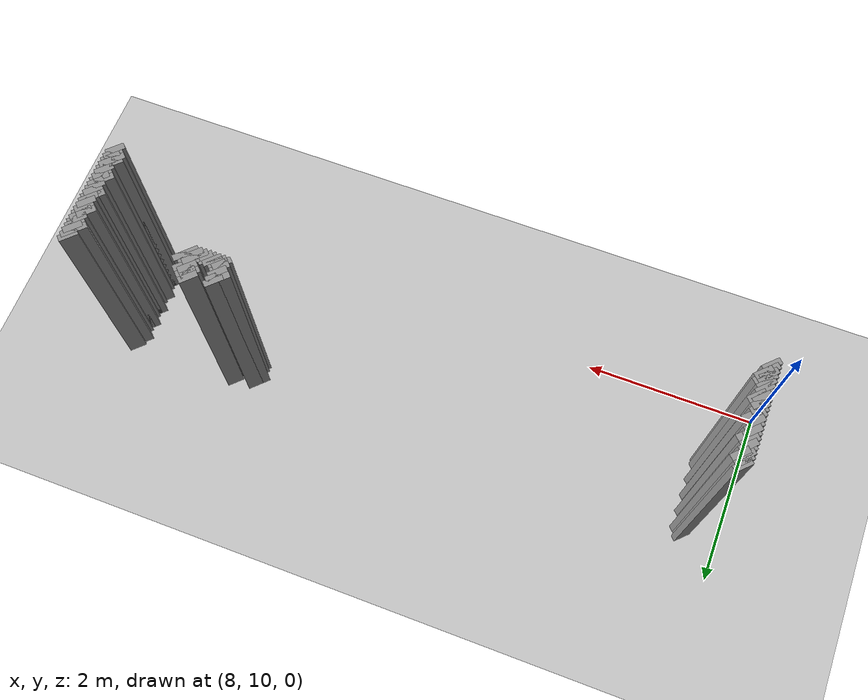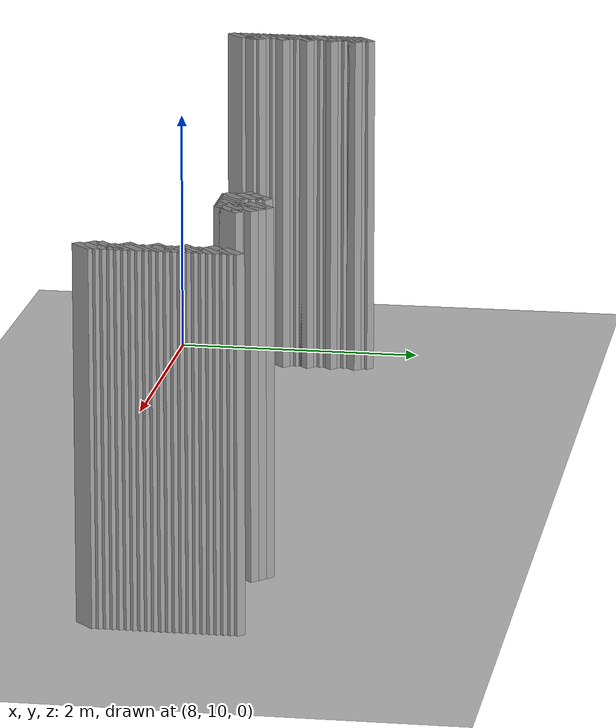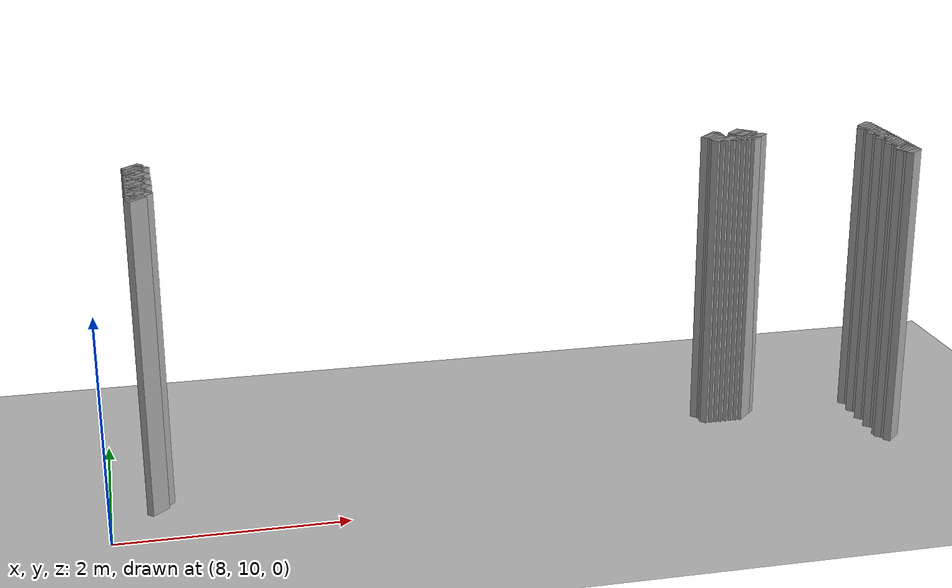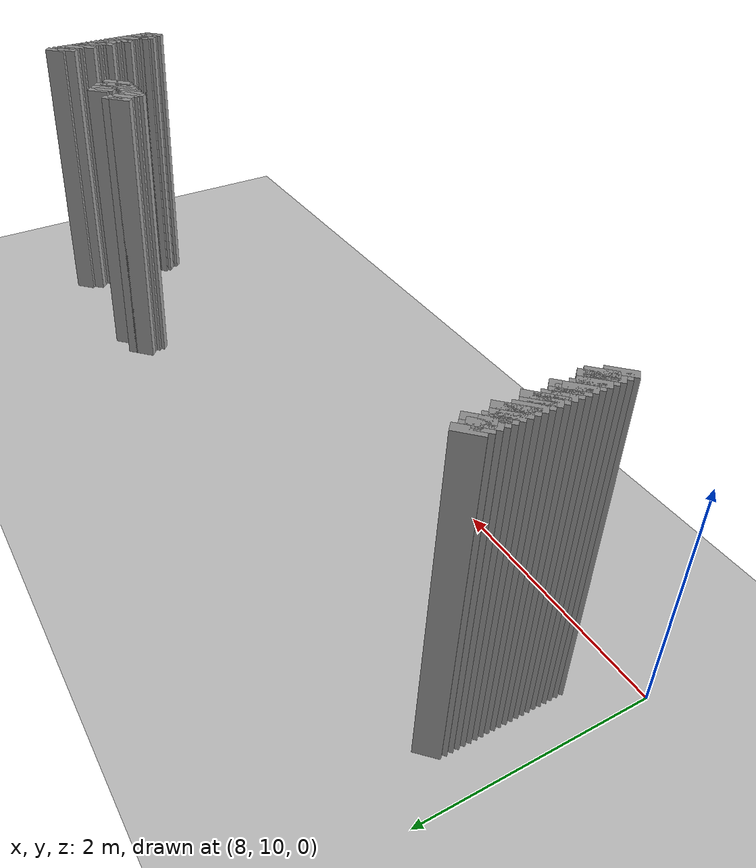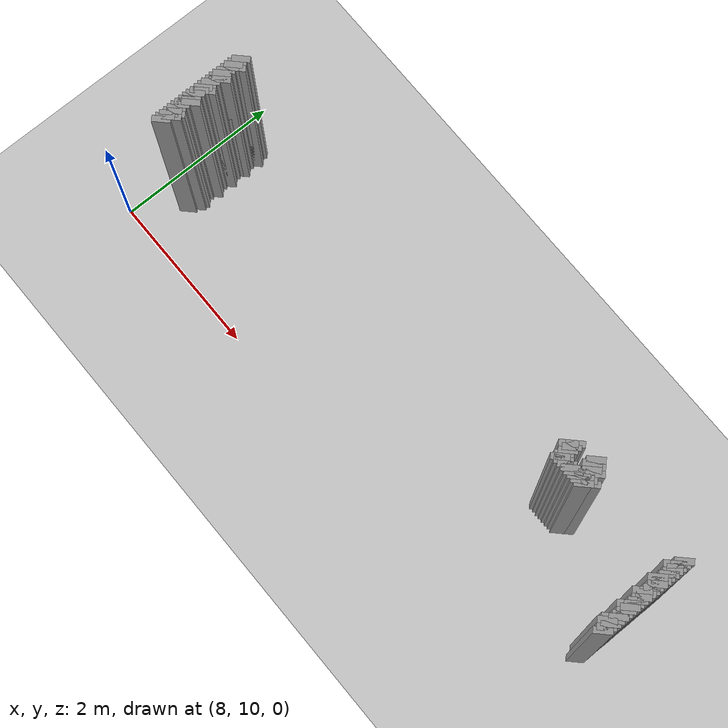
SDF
<sdf version="1.5">
 <world name="default">
  <include><uri>model://ground_plane</uri></include>
  <include><uri>model://sun</uri></include>
  <model name="grey_wall_934">
   <static>1</static>
   <link name="link">
    <pose>13.95 11.65  1.4 0 0 -0.785398163397</pose>
    <collision name="collision"><geometry><box><size>0.0707106781187 .2  2.8</size></box></geometry></collision>
    <visual name="visual">
     <cast_shadows>0</cast_shadows>
     <geometry><box><size>0.0707106781187 .2  2.8</size></box></geometry>
     <material>
      <script>
       <uri>model://grey_wall/materials/scripts</uri>
       <uri>model://grey_wall/materials/textures</uri>
       <name>vrc/grey_wall</name>
      </script>
     </material>
    </visual>
   </link>
  </model>
  <model name="grey_wall_935">
   <static>1</static>
   <link name="link">
    <pose>15.25 11.65  1.4 0 0 -0.785398163397</pose>
    <collision name="collision"><geometry><box><size>0.0707106781187 .2  2.8</size></box></geometry></collision>
    <visual name="visual">
     <cast_shadows>0</cast_shadows>
     <geometry><box><size>0.0707106781187 .2  2.8</size></box></geometry>
     <material>
      <script>
       <uri>model://grey_wall/materials/scripts</uri>
       <uri>model://grey_wall/materials/textures</uri>
       <name>vrc/grey_wall</name>
      </script>
     </material>
    </visual>
   </link>
  </model>
  <model name="grey_wall_936">
   <static>1</static>
   <link name="link">
    <pose>8.4 11.6  1.4 0 0 -0.785398163397</pose>
    <collision name="collision"><geometry><box><size>0.0707106781187 .2  2.8</size></box></geometry></collision>
    <visual name="visual">
     <cast_shadows>0</cast_shadows>
     <geometry><box><size>0.0707106781187 .2  2.8</size></box></geometry>
     <material>
      <script>
       <uri>model://grey_wall/materials/scripts</uri>
       <uri>model://grey_wall/materials/textures</uri>
       <name>vrc/grey_wall</name>
      </script>
     </material>
    </visual>
   </link>
  </model>
  <model name="grey_wall_937">
   <static>1</static>
   <link name="link">
    <pose>13.7 11.6  1.4 0 0 -0.785398163397</pose>
    <collision name="collision"><geometry><box><size>0.0707106781187 .2  2.8</size></box></geometry></collision>
    <visual name="visual">
     <cast_shadows>0</cast_shadows>
     <geometry><box><size>0.0707106781187 .2  2.8</size></box></geometry>
     <material>
      <script>
       <uri>model://grey_wall/materials/scripts</uri>
       <uri>model://grey_wall/materials/textures</uri>
       <name>vrc/grey_wall</name>
      </script>
     </material>
    </visual>
   </link>
  </model>
  <model name="grey_wall_938">
   <static>1</static>
   <link name="link">
    <pose>13.95 11.6  1.4 0 0 -0.785398163397</pose>
    <collision name="collision"><geometry><box><size>0.0707106781187 .2  2.8</size></box></geometry></collision>
    <visual name="visual">
     <cast_shadows>0</cast_shadows>
     <geometry><box><size>0.0707106781187 .2  2.8</size></box></geometry>
     <material>
      <script>
       <uri>model://grey_wall/materials/scripts</uri>
       <uri>model://grey_wall/materials/textures</uri>
       <name>vrc/grey_wall</name>
      </script>
     </material>
    </visual>
   </link>
  </model>
  <model name="grey_wall_939">
   <static>1</static>
   <link name="link">
    <pose>14.0 11.6  1.4 0 0 -0.785398163397</pose>
    <collision name="collision"><geometry><box><size>0.0707106781187 .2  2.8</size></box></geometry></collision>
    <visual name="visual">
     <cast_shadows>0</cast_shadows>
     <geometry><box><size>0.0707106781187 .2  2.8</size></box></geometry>
     <material>
      <script>
       <uri>model://grey_wall/materials/scripts</uri>
       <uri>model://grey_wall/materials/textures</uri>
       <name>vrc/grey_wall</name>
      </script>
     </material>
    </visual>
   </link>
  </model>
  <model name="grey_wall_940">
   <static>1</static>
   <link name="link">
    <pose>15.25 11.6  1.4 0 0 -0.785398163397</pose>
    <collision name="collision"><geometry><box><size>0.0707106781187 .2  2.8</size></box></geometry></collision>
    <visual name="visual">
     <cast_shadows>0</cast_shadows>
     <geometry><box><size>0.0707106781187 .2  2.8</size></box></geometry>
     <material>
      <script>
       <uri>model://grey_wall/materials/scripts</uri>
       <uri>model://grey_wall/materials/textures</uri>
       <name>vrc/grey_wall</name>
      </script>
     </material>
    </visual>
   </link>
  </model>
  <model name="grey_wall_941">
   <static>1</static>
   <link name="link">
    <pose>8.4 11.55  1.4 0 0 -0.785398163397</pose>
    <collision name="collision"><geometry><box><size>0.0707106781187 .2  2.8</size></box></geometry></collision>
    <visual name="visual">
     <cast_shadows>0</cast_shadows>
     <geometry><box><size>0.0707106781187 .2  2.8</size></box></geometry>
     <material>
      <script>
       <uri>model://grey_wall/materials/scripts</uri>
       <uri>model://grey_wall/materials/textures</uri>
       <name>vrc/grey_wall</name>
      </script>
     </material>
    </visual>
   </link>
  </model>
  <model name="grey_wall_942">
   <static>1</static>
   <link name="link">
    <pose>13.65 11.55  1.4 0 0 -0.785398163397</pose>
    <collision name="collision"><geometry><box><size>0.0707106781187 .2  2.8</size></box></geometry></collision>
    <visual name="visual">
     <cast_shadows>0</cast_shadows>
     <geometry><box><size>0.0707106781187 .2  2.8</size></box></geometry>
     <material>
      <script>
       <uri>model://grey_wall/materials/scripts</uri>
       <uri>model://grey_wall/materials/textures</uri>
       <name>vrc/grey_wall</name>
      </script>
     </material>
    </visual>
   </link>
  </model>
  <model name="grey_wall_943">
   <static>1</static>
   <link name="link">
    <pose>13.7 11.55  1.4 0 0 -0.785398163397</pose>
    <collision name="collision"><geometry><box><size>0.0707106781187 .2  2.8</size></box></geometry></collision>
    <visual name="visual">
     <cast_shadows>0</cast_shadows>
     <geometry><box><size>0.0707106781187 .2  2.8</size></box></geometry>
     <material>
      <script>
       <uri>model://grey_wall/materials/scripts</uri>
       <uri>model://grey_wall/materials/textures</uri>
       <name>vrc/grey_wall</name>
      </script>
     </material>
    </visual>
   </link>
  </model>
  <model name="grey_wall_944">
   <static>1</static>
   <link name="link">
    <pose>14.0 11.55  1.4 0 0 -0.785398163397</pose>
    <collision name="collision"><geometry><box><size>0.0707106781187 .2  2.8</size></box></geometry></collision>
    <visual name="visual">
     <cast_shadows>0</cast_shadows>
     <geometry><box><size>0.0707106781187 .2  2.8</size></box></geometry>
     <material>
      <script>
       <uri>model://grey_wall/materials/scripts</uri>
       <uri>model://grey_wall/materials/textures</uri>
       <name>vrc/grey_wall</name>
      </script>
     </material>
    </visual>
   </link>
  </model>
  <model name="grey_wall_945">
   <static>1</static>
   <link name="link">
    <pose>14.05 11.55  1.4 0 0 -0.785398163397</pose>
    <collision name="collision"><geometry><box><size>0.0707106781187 .2  2.8</size></box></geometry></collision>
    <visual name="visual">
     <cast_shadows>0</cast_shadows>
     <geometry><box><size>0.0707106781187 .2  2.8</size></box></geometry>
     <material>
      <script>
       <uri>model://grey_wall/materials/scripts</uri>
       <uri>model://grey_wall/materials/textures</uri>
       <name>vrc/grey_wall</name>
      </script>
     </material>
    </visual>
   </link>
  </model>
  <model name="grey_wall_946">
   <static>1</static>
   <link name="link">
    <pose>15.2 11.55  1.4 0 0 -0.785398163397</pose>
    <collision name="collision"><geometry><box><size>0.0707106781187 .2  2.8</size></box></geometry></collision>
    <visual name="visual">
     <cast_shadows>0</cast_shadows>
     <geometry><box><size>0.0707106781187 .2  2.8</size></box></geometry>
     <material>
      <script>
       <uri>model://grey_wall/materials/scripts</uri>
       <uri>model://grey_wall/materials/textures</uri>
       <name>vrc/grey_wall</name>
      </script>
     </material>
    </visual>
   </link>
  </model>
  <model name="grey_wall_947">
   <static>1</static>
   <link name="link">
    <pose>15.25 11.55  1.4 0 0 -0.785398163397</pose>
    <collision name="collision"><geometry><box><size>0.0707106781187 .2  2.8</size></box></geometry></collision>
    <visual name="visual">
     <cast_shadows>0</cast_shadows>
     <geometry><box><size>0.0707106781187 .2  2.8</size></box></geometry>
     <material>
      <script>
       <uri>model://grey_wall/materials/scripts</uri>
       <uri>model://grey_wall/materials/textures</uri>
       <name>vrc/grey_wall</name>
      </script>
     </material>
    </visual>
   </link>
  </model>
  <model name="grey_wall_948">
   <static>1</static>
   <link name="link">
    <pose>8.4 11.5  1.4 0 0 -0.785398163397</pose>
    <collision name="collision"><geometry><box><size>0.0707106781187 .2  2.8</size></box></geometry></collision>
    <visual name="visual">
     <cast_shadows>0</cast_shadows>
     <geometry><box><size>0.0707106781187 .2  2.8</size></box></geometry>
     <material>
      <script>
       <uri>model://grey_wall/materials/scripts</uri>
       <uri>model://grey_wall/materials/textures</uri>
       <name>vrc/grey_wall</name>
      </script>
     </material>
    </visual>
   </link>
  </model>
  <model name="grey_wall_949">
   <static>1</static>
   <link name="link">
    <pose>8.45 11.5  1.4 0 0 -0.785398163397</pose>
    <collision name="collision"><geometry><box><size>0.0707106781187 .2  2.8</size></box></geometry></collision>
    <visual name="visual">
     <cast_shadows>0</cast_shadows>
     <geometry><box><size>0.0707106781187 .2  2.8</size></box></geometry>
     <material>
      <script>
       <uri>model://grey_wall/materials/scripts</uri>
       <uri>model://grey_wall/materials/textures</uri>
       <name>vrc/grey_wall</name>
      </script>
     </material>
    </visual>
   </link>
  </model>
  <model name="grey_wall_950">
   <static>1</static>
   <link name="link">
    <pose>13.7 11.5  1.4 0 0 -0.785398163397</pose>
    <collision name="collision"><geometry><box><size>0.0707106781187 .2  2.8</size></box></geometry></collision>
    <visual name="visual">
     <cast_shadows>0</cast_shadows>
     <geometry><box><size>0.0707106781187 .2  2.8</size></box></geometry>
     <material>
      <script>
       <uri>model://grey_wall/materials/scripts</uri>
       <uri>model://grey_wall/materials/textures</uri>
       <name>vrc/grey_wall</name>
      </script>
     </material>
    </visual>
   </link>
  </model>
  <model name="grey_wall_951">
   <static>1</static>
   <link name="link">
    <pose>14.0 11.5  1.4 0 0 -0.785398163397</pose>
    <collision name="collision"><geometry><box><size>0.0707106781187 .2  2.8</size></box></geometry></collision>
    <visual name="visual">
     <cast_shadows>0</cast_shadows>
     <geometry><box><size>0.0707106781187 .2  2.8</size></box></geometry>
     <material>
      <script>
       <uri>model://grey_wall/materials/scripts</uri>
       <uri>model://grey_wall/materials/textures</uri>
       <name>vrc/grey_wall</name>
      </script>
     </material>
    </visual>
   </link>
  </model>
  <model name="grey_wall_952">
   <static>1</static>
   <link name="link">
    <pose>15.25 11.5  1.4 0 0 -0.785398163397</pose>
    <collision name="collision"><geometry><box><size>0.0707106781187 .2  2.8</size></box></geometry></collision>
    <visual name="visual">
     <cast_shadows>0</cast_shadows>
     <geometry><box><size>0.0707106781187 .2  2.8</size></box></geometry>
     <material>
      <script>
       <uri>model://grey_wall/materials/scripts</uri>
       <uri>model://grey_wall/materials/textures</uri>
       <name>vrc/grey_wall</name>
      </script>
     </material>
    </visual>
   </link>
  </model>
  <model name="grey_wall_953">
   <static>1</static>
   <link name="link">
    <pose>8.4 11.45  1.4 0 0 -0.785398163397</pose>
    <collision name="collision"><geometry><box><size>0.0707106781187 .2  2.8</size></box></geometry></collision>
    <visual name="visual">
     <cast_shadows>0</cast_shadows>
     <geometry><box><size>0.0707106781187 .2  2.8</size></box></geometry>
     <material>
      <script>
       <uri>model://grey_wall/materials/scripts</uri>
       <uri>model://grey_wall/materials/textures</uri>
       <name>vrc/grey_wall</name>
      </script>
     </material>
    </visual>
   </link>
  </model>
  <model name="grey_wall_954">
   <static>1</static>
   <link name="link">
    <pose>13.7 11.45  1.4 0 0 -0.785398163397</pose>
    <collision name="collision"><geometry><box><size>0.0707106781187 .2  2.8</size></box></geometry></collision>
    <visual name="visual">
     <cast_shadows>0</cast_shadows>
     <geometry><box><size>0.0707106781187 .2  2.8</size></box></geometry>
     <material>
      <script>
       <uri>model://grey_wall/materials/scripts</uri>
       <uri>model://grey_wall/materials/textures</uri>
       <name>vrc/grey_wall</name>
      </script>
     </material>
    </visual>
   </link>
  </model>
  <model name="grey_wall_955">
   <static>1</static>
   <link name="link">
    <pose>14.0 11.45  1.4 0 0 -0.785398163397</pose>
    <collision name="collision"><geometry><box><size>0.0707106781187 .2  2.8</size></box></geometry></collision>
    <visual name="visual">
     <cast_shadows>0</cast_shadows>
     <geometry><box><size>0.0707106781187 .2  2.8</size></box></geometry>
     <material>
      <script>
       <uri>model://grey_wall/materials/scripts</uri>
       <uri>model://grey_wall/materials/textures</uri>
       <name>vrc/grey_wall</name>
      </script>
     </material>
    </visual>
   </link>
  </model>
  <model name="grey_wall_956">
   <static>1</static>
   <link name="link">
    <pose>14.05 11.45  1.4 0 0 -0.785398163397</pose>
    <collision name="collision"><geometry><box><size>0.0707106781187 .2  2.8</size></box></geometry></collision>
    <visual name="visual">
     <cast_shadows>0</cast_shadows>
     <geometry><box><size>0.0707106781187 .2  2.8</size></box></geometry>
     <material>
      <script>
       <uri>model://grey_wall/materials/scripts</uri>
       <uri>model://grey_wall/materials/textures</uri>
       <name>vrc/grey_wall</name>
      </script>
     </material>
    </visual>
   </link>
  </model>
  <model name="grey_wall_957">
   <static>1</static>
   <link name="link">
    <pose>14.1 11.45  1.4 0 0 -0.785398163397</pose>
    <collision name="collision"><geometry><box><size>0.0707106781187 .2  2.8</size></box></geometry></collision>
    <visual name="visual">
     <cast_shadows>0</cast_shadows>
     <geometry><box><size>0.0707106781187 .2  2.8</size></box></geometry>
     <material>
      <script>
       <uri>model://grey_wall/materials/scripts</uri>
       <uri>model://grey_wall/materials/textures</uri>
       <name>vrc/grey_wall</name>
      </script>
     </material>
    </visual>
   </link>
  </model>
  <model name="grey_wall_958">
   <static>1</static>
   <link name="link">
    <pose>15.25 11.45  1.4 0 0 -0.785398163397</pose>
    <collision name="collision"><geometry><box><size>0.0707106781187 .2  2.8</size></box></geometry></collision>
    <visual name="visual">
     <cast_shadows>0</cast_shadows>
     <geometry><box><size>0.0707106781187 .2  2.8</size></box></geometry>
     <material>
      <script>
       <uri>model://grey_wall/materials/scripts</uri>
       <uri>model://grey_wall/materials/textures</uri>
       <name>vrc/grey_wall</name>
      </script>
     </material>
    </visual>
   </link>
  </model>
  <model name="grey_wall_959">
   <static>1</static>
   <link name="link">
    <pose>8.4 11.4  1.4 0 0 -0.785398163397</pose>
    <collision name="collision"><geometry><box><size>0.0707106781187 .2  2.8</size></box></geometry></collision>
    <visual name="visual">
     <cast_shadows>0</cast_shadows>
     <geometry><box><size>0.0707106781187 .2  2.8</size></box></geometry>
     <material>
      <script>
       <uri>model://grey_wall/materials/scripts</uri>
       <uri>model://grey_wall/materials/textures</uri>
       <name>vrc/grey_wall</name>
      </script>
     </material>
    </visual>
   </link>
  </model>
  <model name="grey_wall_960">
   <static>1</static>
   <link name="link">
    <pose>13.7 11.4  1.4 0 0 -0.785398163397</pose>
    <collision name="collision"><geometry><box><size>0.0707106781187 .2  2.8</size></box></geometry></collision>
    <visual name="visual">
     <cast_shadows>0</cast_shadows>
     <geometry><box><size>0.0707106781187 .2  2.8</size></box></geometry>
     <material>
      <script>
       <uri>model://grey_wall/materials/scripts</uri>
       <uri>model://grey_wall/materials/textures</uri>
       <name>vrc/grey_wall</name>
      </script>
     </material>
    </visual>
   </link>
  </model>
  <model name="grey_wall_961">
   <static>1</static>
   <link name="link">
    <pose>13.75 11.4  1.4 0 0 -0.785398163397</pose>
    <collision name="collision"><geometry><box><size>0.0707106781187 .2  2.8</size></box></geometry></collision>
    <visual name="visual">
     <cast_shadows>0</cast_shadows>
     <geometry><box><size>0.0707106781187 .2  2.8</size></box></geometry>
     <material>
      <script>
       <uri>model://grey_wall/materials/scripts</uri>
       <uri>model://grey_wall/materials/textures</uri>
       <name>vrc/grey_wall</name>
      </script>
     </material>
    </visual>
   </link>
  </model>
  <model name="grey_wall_962">
   <static>1</static>
   <link name="link">
    <pose>13.8 11.4  1.4 0 0 -0.785398163397</pose>
    <collision name="collision"><geometry><box><size>0.0707106781187 .2  2.8</size></box></geometry></collision>
    <visual name="visual">
     <cast_shadows>0</cast_shadows>
     <geometry><box><size>0.0707106781187 .2  2.8</size></box></geometry>
     <material>
      <script>
       <uri>model://grey_wall/materials/scripts</uri>
       <uri>model://grey_wall/materials/textures</uri>
       <name>vrc/grey_wall</name>
      </script>
     </material>
    </visual>
   </link>
  </model>
  <model name="grey_wall_963">
   <static>1</static>
   <link name="link">
    <pose>13.85 11.4  1.4 0 0 -0.785398163397</pose>
    <collision name="collision"><geometry><box><size>0.0707106781187 .2  2.8</size></box></geometry></collision>
    <visual name="visual">
     <cast_shadows>0</cast_shadows>
     <geometry><box><size>0.0707106781187 .2  2.8</size></box></geometry>
     <material>
      <script>
       <uri>model://grey_wall/materials/scripts</uri>
       <uri>model://grey_wall/materials/textures</uri>
       <name>vrc/grey_wall</name>
      </script>
     </material>
    </visual>
   </link>
  </model>
  <model name="grey_wall_964">
   <static>1</static>
   <link name="link">
    <pose>13.9 11.4  1.4 0 0 -0.785398163397</pose>
    <collision name="collision"><geometry><box><size>0.0707106781187 .2  2.8</size></box></geometry></collision>
    <visual name="visual">
     <cast_shadows>0</cast_shadows>
     <geometry><box><size>0.0707106781187 .2  2.8</size></box></geometry>
     <material>
      <script>
       <uri>model://grey_wall/materials/scripts</uri>
       <uri>model://grey_wall/materials/textures</uri>
       <name>vrc/grey_wall</name>
      </script>
     </material>
    </visual>
   </link>
  </model>
  <model name="grey_wall_965">
   <static>1</static>
   <link name="link">
    <pose>13.95 11.4  1.4 0 0 -0.785398163397</pose>
    <collision name="collision"><geometry><box><size>0.0707106781187 .2  2.8</size></box></geometry></collision>
    <visual name="visual">
     <cast_shadows>0</cast_shadows>
     <geometry><box><size>0.0707106781187 .2  2.8</size></box></geometry>
     <material>
      <script>
       <uri>model://grey_wall/materials/scripts</uri>
       <uri>model://grey_wall/materials/textures</uri>
       <name>vrc/grey_wall</name>
      </script>
     </material>
    </visual>
   </link>
  </model>
  <model name="grey_wall_966">
   <static>1</static>
   <link name="link">
    <pose>14.0 11.4  1.4 0 0 -0.785398163397</pose>
    <collision name="collision"><geometry><box><size>0.0707106781187 .2  2.8</size></box></geometry></collision>
    <visual name="visual">
     <cast_shadows>0</cast_shadows>
     <geometry><box><size>0.0707106781187 .2  2.8</size></box></geometry>
     <material>
      <script>
       <uri>model://grey_wall/materials/scripts</uri>
       <uri>model://grey_wall/materials/textures</uri>
       <name>vrc/grey_wall</name>
      </script>
     </material>
    </visual>
   </link>
  </model>
  <model name="grey_wall_967">
   <static>1</static>
   <link name="link">
    <pose>14.05 11.4  1.4 0 0 -0.785398163397</pose>
    <collision name="collision"><geometry><box><size>0.0707106781187 .2  2.8</size></box></geometry></collision>
    <visual name="visual">
     <cast_shadows>0</cast_shadows>
     <geometry><box><size>0.0707106781187 .2  2.8</size></box></geometry>
     <material>
      <script>
       <uri>model://grey_wall/materials/scripts</uri>
       <uri>model://grey_wall/materials/textures</uri>
       <name>vrc/grey_wall</name>
      </script>
     </material>
    </visual>
   </link>
  </model>
  <model name="grey_wall_968">
   <static>1</static>
   <link name="link">
    <pose>15.25 11.4  1.4 0 0 -0.785398163397</pose>
    <collision name="collision"><geometry><box><size>0.0707106781187 .2  2.8</size></box></geometry></collision>
    <visual name="visual">
     <cast_shadows>0</cast_shadows>
     <geometry><box><size>0.0707106781187 .2  2.8</size></box></geometry>
     <material>
      <script>
       <uri>model://grey_wall/materials/scripts</uri>
       <uri>model://grey_wall/materials/textures</uri>
       <name>vrc/grey_wall</name>
      </script>
     </material>
    </visual>
   </link>
  </model>
  <model name="grey_wall_969">
   <static>1</static>
   <link name="link">
    <pose>8.4 11.35  1.4 0 0 -0.785398163397</pose>
    <collision name="collision"><geometry><box><size>0.0707106781187 .2  2.8</size></box></geometry></collision>
    <visual name="visual">
     <cast_shadows>0</cast_shadows>
     <geometry><box><size>0.0707106781187 .2  2.8</size></box></geometry>
     <material>
      <script>
       <uri>model://grey_wall/materials/scripts</uri>
       <uri>model://grey_wall/materials/textures</uri>
       <name>vrc/grey_wall</name>
      </script>
     </material>
    </visual>
   </link>
  </model>
  <model name="grey_wall_970">
   <static>1</static>
   <link name="link">
    <pose>15.2 11.35  1.4 0 0 -0.785398163397</pose>
    <collision name="collision"><geometry><box><size>0.0707106781187 .2  2.8</size></box></geometry></collision>
    <visual name="visual">
     <cast_shadows>0</cast_shadows>
     <geometry><box><size>0.0707106781187 .2  2.8</size></box></geometry>
     <material>
      <script>
       <uri>model://grey_wall/materials/scripts</uri>
       <uri>model://grey_wall/materials/textures</uri>
       <name>vrc/grey_wall</name>
      </script>
     </material>
    </visual>
   </link>
  </model>
  <model name="grey_wall_971">
   <static>1</static>
   <link name="link">
    <pose>15.25 11.35  1.4 0 0 -0.785398163397</pose>
    <collision name="collision"><geometry><box><size>0.0707106781187 .2  2.8</size></box></geometry></collision>
    <visual name="visual">
     <cast_shadows>0</cast_shadows>
     <geometry><box><size>0.0707106781187 .2  2.8</size></box></geometry>
     <material>
      <script>
       <uri>model://grey_wall/materials/scripts</uri>
       <uri>model://grey_wall/materials/textures</uri>
       <name>vrc/grey_wall</name>
      </script>
     </material>
    </visual>
   </link>
  </model>
  <model name="grey_wall_972">
   <static>1</static>
   <link name="link">
    <pose>8.4 11.3  1.4 0 0 -0.785398163397</pose>
    <collision name="collision"><geometry><box><size>0.0707106781187 .2  2.8</size></box></geometry></collision>
    <visual name="visual">
     <cast_shadows>0</cast_shadows>
     <geometry><box><size>0.0707106781187 .2  2.8</size></box></geometry>
     <material>
      <script>
       <uri>model://grey_wall/materials/scripts</uri>
       <uri>model://grey_wall/materials/textures</uri>
       <name>vrc/grey_wall</name>
      </script>
     </material>
    </visual>
   </link>
  </model>
  <model name="grey_wall_973">
   <static>1</static>
   <link name="link">
    <pose>8.45 11.3  1.4 0 0 -0.785398163397</pose>
    <collision name="collision"><geometry><box><size>0.0707106781187 .2  2.8</size></box></geometry></collision>
    <visual name="visual">
     <cast_shadows>0</cast_shadows>
     <geometry><box><size>0.0707106781187 .2  2.8</size></box></geometry>
     <material>
      <script>
       <uri>model://grey_wall/materials/scripts</uri>
       <uri>model://grey_wall/materials/textures</uri>
       <name>vrc/grey_wall</name>
      </script>
     </material>
    </visual>
   </link>
  </model>
  <model name="grey_wall_974">
   <static>1</static>
   <link name="link">
    <pose>15.25 11.3  1.4 0 0 -0.785398163397</pose>
    <collision name="collision"><geometry><box><size>0.0707106781187 .2  2.8</size></box></geometry></collision>
    <visual name="visual">
     <cast_shadows>0</cast_shadows>
     <geometry><box><size>0.0707106781187 .2  2.8</size></box></geometry>
     <material>
      <script>
       <uri>model://grey_wall/materials/scripts</uri>
       <uri>model://grey_wall/materials/textures</uri>
       <name>vrc/grey_wall</name>
      </script>
     </material>
    </visual>
   </link>
  </model>
  <model name="grey_wall_975">
   <static>1</static>
   <link name="link">
    <pose>8.4 11.25  1.4 0 0 -0.785398163397</pose>
    <collision name="collision"><geometry><box><size>0.0707106781187 .2  2.8</size></box></geometry></collision>
    <visual name="visual">
     <cast_shadows>0</cast_shadows>
     <geometry><box><size>0.0707106781187 .2  2.8</size></box></geometry>
     <material>
      <script>
       <uri>model://grey_wall/materials/scripts</uri>
       <uri>model://grey_wall/materials/textures</uri>
       <name>vrc/grey_wall</name>
      </script>
     </material>
    </visual>
   </link>
  </model>
  <model name="grey_wall_976">
   <static>1</static>
   <link name="link">
    <pose>15.25 11.25  1.4 0 0 -0.785398163397</pose>
    <collision name="collision"><geometry><box><size>0.0707106781187 .2  2.8</size></box></geometry></collision>
    <visual name="visual">
     <cast_shadows>0</cast_shadows>
     <geometry><box><size>0.0707106781187 .2  2.8</size></box></geometry>
     <material>
      <script>
       <uri>model://grey_wall/materials/scripts</uri>
       <uri>model://grey_wall/materials/textures</uri>
       <name>vrc/grey_wall</name>
      </script>
     </material>
    </visual>
   </link>
  </model>
  <model name="grey_wall_977">
   <static>1</static>
   <link name="link">
    <pose>8.4 11.2  1.4 0 0 -0.785398163397</pose>
    <collision name="collision"><geometry><box><size>0.0707106781187 .2  2.8</size></box></geometry></collision>
    <visual name="visual">
     <cast_shadows>0</cast_shadows>
     <geometry><box><size>0.0707106781187 .2  2.8</size></box></geometry>
     <material>
      <script>
       <uri>model://grey_wall/materials/scripts</uri>
       <uri>model://grey_wall/materials/textures</uri>
       <name>vrc/grey_wall</name>
      </script>
     </material>
    </visual>
   </link>
  </model>
  <model name="grey_wall_978">
   <static>1</static>
   <link name="link">
    <pose>15.25 11.2  1.4 0 0 -0.785398163397</pose>
    <collision name="collision"><geometry><box><size>0.0707106781187 .2  2.8</size></box></geometry></collision>
    <visual name="visual">
     <cast_shadows>0</cast_shadows>
     <geometry><box><size>0.0707106781187 .2  2.8</size></box></geometry>
     <material>
      <script>
       <uri>model://grey_wall/materials/scripts</uri>
       <uri>model://grey_wall/materials/textures</uri>
       <name>vrc/grey_wall</name>
      </script>
     </material>
    </visual>
   </link>
  </model>
  <model name="grey_wall_979">
   <static>1</static>
   <link name="link">
    <pose>8.4 11.15  1.4 0 0 -0.785398163397</pose>
    <collision name="collision"><geometry><box><size>0.0707106781187 .2  2.8</size></box></geometry></collision>
    <visual name="visual">
     <cast_shadows>0</cast_shadows>
     <geometry><box><size>0.0707106781187 .2  2.8</size></box></geometry>
     <material>
      <script>
       <uri>model://grey_wall/materials/scripts</uri>
       <uri>model://grey_wall/materials/textures</uri>
       <name>vrc/grey_wall</name>
      </script>
     </material>
    </visual>
   </link>
  </model>
  <model name="grey_wall_980">
   <static>1</static>
   <link name="link">
    <pose>15.2 11.15  1.4 0 0 -0.785398163397</pose>
    <collision name="collision"><geometry><box><size>0.0707106781187 .2  2.8</size></box></geometry></collision>
    <visual name="visual">
     <cast_shadows>0</cast_shadows>
     <geometry><box><size>0.0707106781187 .2  2.8</size></box></geometry>
     <material>
      <script>
       <uri>model://grey_wall/materials/scripts</uri>
       <uri>model://grey_wall/materials/textures</uri>
       <name>vrc/grey_wall</name>
      </script>
     </material>
    </visual>
   </link>
  </model>
  <model name="grey_wall_981">
   <static>1</static>
   <link name="link">
    <pose>15.25 11.15  1.4 0 0 -0.785398163397</pose>
    <collision name="collision"><geometry><box><size>0.0707106781187 .2  2.8</size></box></geometry></collision>
    <visual name="visual">
     <cast_shadows>0</cast_shadows>
     <geometry><box><size>0.0707106781187 .2  2.8</size></box></geometry>
     <material>
      <script>
       <uri>model://grey_wall/materials/scripts</uri>
       <uri>model://grey_wall/materials/textures</uri>
       <name>vrc/grey_wall</name>
      </script>
     </material>
    </visual>
   </link>
  </model>
  <model name="grey_wall_982">
   <static>1</static>
   <link name="link">
    <pose>8.4 11.1  1.4 0 0 -0.785398163397</pose>
    <collision name="collision"><geometry><box><size>0.0707106781187 .2  2.8</size></box></geometry></collision>
    <visual name="visual">
     <cast_shadows>0</cast_shadows>
     <geometry><box><size>0.0707106781187 .2  2.8</size></box></geometry>
     <material>
      <script>
       <uri>model://grey_wall/materials/scripts</uri>
       <uri>model://grey_wall/materials/textures</uri>
       <name>vrc/grey_wall</name>
      </script>
     </material>
    </visual>
   </link>
  </model>
  <model name="grey_wall_983">
   <static>1</static>
   <link name="link">
    <pose>8.45 11.1  1.4 0 0 -0.785398163397</pose>
    <collision name="collision"><geometry><box><size>0.0707106781187 .2  2.8</size></box></geometry></collision>
    <visual name="visual">
     <cast_shadows>0</cast_shadows>
     <geometry><box><size>0.0707106781187 .2  2.8</size></box></geometry>
     <material>
      <script>
       <uri>model://grey_wall/materials/scripts</uri>
       <uri>model://grey_wall/materials/textures</uri>
       <name>vrc/grey_wall</name>
      </script>
     </material>
    </visual>
   </link>
  </model>
  <model name="grey_wall_984">
   <static>1</static>
   <link name="link">
    <pose>15.25 11.1  1.4 0 0 -0.785398163397</pose>
    <collision name="collision"><geometry><box><size>0.0707106781187 .2  2.8</size></box></geometry></collision>
    <visual name="visual">
     <cast_shadows>0</cast_shadows>
     <geometry><box><size>0.0707106781187 .2  2.8</size></box></geometry>
     <material>
      <script>
       <uri>model://grey_wall/materials/scripts</uri>
       <uri>model://grey_wall/materials/textures</uri>
       <name>vrc/grey_wall</name>
      </script>
     </material>
    </visual>
   </link>
  </model>
  <model name="grey_wall_985">
   <static>1</static>
   <link name="link">
    <pose>8.4 11.05  1.4 0 0 -0.785398163397</pose>
    <collision name="collision"><geometry><box><size>0.0707106781187 .2  2.8</size></box></geometry></collision>
    <visual name="visual">
     <cast_shadows>0</cast_shadows>
     <geometry><box><size>0.0707106781187 .2  2.8</size></box></geometry>
     <material>
      <script>
       <uri>model://grey_wall/materials/scripts</uri>
       <uri>model://grey_wall/materials/textures</uri>
       <name>vrc/grey_wall</name>
      </script>
     </material>
    </visual>
   </link>
  </model>
  <model name="grey_wall_986">
   <static>1</static>
   <link name="link">
    <pose>15.25 11.05  1.4 0 0 -0.785398163397</pose>
    <collision name="collision"><geometry><box><size>0.0707106781187 .2  2.8</size></box></geometry></collision>
    <visual name="visual">
     <cast_shadows>0</cast_shadows>
     <geometry><box><size>0.0707106781187 .2  2.8</size></box></geometry>
     <material>
      <script>
       <uri>model://grey_wall/materials/scripts</uri>
       <uri>model://grey_wall/materials/textures</uri>
       <name>vrc/grey_wall</name>
      </script>
     </material>
    </visual>
   </link>
  </model>
  <model name="grey_wall_987">
   <static>1</static>
   <link name="link">
    <pose>8.4 11.0  1.4 0 0 -0.785398163397</pose>
    <collision name="collision"><geometry><box><size>0.0707106781187 .2  2.8</size></box></geometry></collision>
    <visual name="visual">
     <cast_shadows>0</cast_shadows>
     <geometry><box><size>0.0707106781187 .2  2.8</size></box></geometry>
     <material>
      <script>
       <uri>model://grey_wall/materials/scripts</uri>
       <uri>model://grey_wall/materials/textures</uri>
       <name>vrc/grey_wall</name>
      </script>
     </material>
    </visual>
   </link>
  </model>
  <model name="grey_wall_988">
   <static>1</static>
   <link name="link">
    <pose>15.25 11.0  1.4 0 0 -0.785398163397</pose>
    <collision name="collision"><geometry><box><size>0.0707106781187 .2  2.8</size></box></geometry></collision>
    <visual name="visual">
     <cast_shadows>0</cast_shadows>
     <geometry><box><size>0.0707106781187 .2  2.8</size></box></geometry>
     <material>
      <script>
       <uri>model://grey_wall/materials/scripts</uri>
       <uri>model://grey_wall/materials/textures</uri>
       <name>vrc/grey_wall</name>
      </script>
     </material>
    </visual>
   </link>
  </model>
  <model name="grey_wall_989">
   <static>1</static>
   <link name="link">
    <pose>8.4 10.95  1.4 0 0 -0.785398163397</pose>
    <collision name="collision"><geometry><box><size>0.0707106781187 .2  2.8</size></box></geometry></collision>
    <visual name="visual">
     <cast_shadows>0</cast_shadows>
     <geometry><box><size>0.0707106781187 .2  2.8</size></box></geometry>
     <material>
      <script>
       <uri>model://grey_wall/materials/scripts</uri>
       <uri>model://grey_wall/materials/textures</uri>
       <name>vrc/grey_wall</name>
      </script>
     </material>
    </visual>
   </link>
  </model>
  <model name="grey_wall_990">
   <static>1</static>
   <link name="link">
    <pose>15.2 10.95  1.4 0 0 -0.785398163397</pose>
    <collision name="collision"><geometry><box><size>0.0707106781187 .2  2.8</size></box></geometry></collision>
    <visual name="visual">
     <cast_shadows>0</cast_shadows>
     <geometry><box><size>0.0707106781187 .2  2.8</size></box></geometry>
     <material>
      <script>
       <uri>model://grey_wall/materials/scripts</uri>
       <uri>model://grey_wall/materials/textures</uri>
       <name>vrc/grey_wall</name>
      </script>
     </material>
    </visual>
   </link>
  </model>
  <model name="grey_wall_991">
   <static>1</static>
   <link name="link">
    <pose>15.25 10.95  1.4 0 0 -0.785398163397</pose>
    <collision name="collision"><geometry><box><size>0.0707106781187 .2  2.8</size></box></geometry></collision>
    <visual name="visual">
     <cast_shadows>0</cast_shadows>
     <geometry><box><size>0.0707106781187 .2  2.8</size></box></geometry>
     <material>
      <script>
       <uri>model://grey_wall/materials/scripts</uri>
       <uri>model://grey_wall/materials/textures</uri>
       <name>vrc/grey_wall</name>
      </script>
     </material>
    </visual>
   </link>
  </model>
  <model name="grey_wall_992">
   <static>1</static>
   <link name="link">
    <pose>8.4 10.9  1.4 0 0 -0.785398163397</pose>
    <collision name="collision"><geometry><box><size>0.0707106781187 .2  2.8</size></box></geometry></collision>
    <visual name="visual">
     <cast_shadows>0</cast_shadows>
     <geometry><box><size>0.0707106781187 .2  2.8</size></box></geometry>
     <material>
      <script>
       <uri>model://grey_wall/materials/scripts</uri>
       <uri>model://grey_wall/materials/textures</uri>
       <name>vrc/grey_wall</name>
      </script>
     </material>
    </visual>
   </link>
  </model>
  <model name="grey_wall_993">
   <static>1</static>
   <link name="link">
    <pose>8.45 10.9  1.4 0 0 -0.785398163397</pose>
    <collision name="collision"><geometry><box><size>0.0707106781187 .2  2.8</size></box></geometry></collision>
    <visual name="visual">
     <cast_shadows>0</cast_shadows>
     <geometry><box><size>0.0707106781187 .2  2.8</size></box></geometry>
     <material>
      <script>
       <uri>model://grey_wall/materials/scripts</uri>
       <uri>model://grey_wall/materials/textures</uri>
       <name>vrc/grey_wall</name>
      </script>
     </material>
    </visual>
   </link>
  </model>
  <model name="grey_wall_994">
   <static>1</static>
   <link name="link">
    <pose>15.25 10.9  1.4 0 0 -0.785398163397</pose>
    <collision name="collision"><geometry><box><size>0.0707106781187 .2  2.8</size></box></geometry></collision>
    <visual name="visual">
     <cast_shadows>0</cast_shadows>
     <geometry><box><size>0.0707106781187 .2  2.8</size></box></geometry>
     <material>
      <script>
       <uri>model://grey_wall/materials/scripts</uri>
       <uri>model://grey_wall/materials/textures</uri>
       <name>vrc/grey_wall</name>
      </script>
     </material>
    </visual>
   </link>
  </model>
  <model name="grey_wall_995">
   <static>1</static>
   <link name="link">
    <pose>8.4 10.85  1.4 0 0 -0.785398163397</pose>
    <collision name="collision"><geometry><box><size>0.0707106781187 .2  2.8</size></box></geometry></collision>
    <visual name="visual">
     <cast_shadows>0</cast_shadows>
     <geometry><box><size>0.0707106781187 .2  2.8</size></box></geometry>
     <material>
      <script>
       <uri>model://grey_wall/materials/scripts</uri>
       <uri>model://grey_wall/materials/textures</uri>
       <name>vrc/grey_wall</name>
      </script>
     </material>
    </visual>
   </link>
  </model>
  <model name="grey_wall_996">
   <static>1</static>
   <link name="link">
    <pose>15.25 10.85  1.4 0 0 -0.785398163397</pose>
    <collision name="collision"><geometry><box><size>0.0707106781187 .2  2.8</size></box></geometry></collision>
    <visual name="visual">
     <cast_shadows>0</cast_shadows>
     <geometry><box><size>0.0707106781187 .2  2.8</size></box></geometry>
     <material>
      <script>
       <uri>model://grey_wall/materials/scripts</uri>
       <uri>model://grey_wall/materials/textures</uri>
       <name>vrc/grey_wall</name>
      </script>
     </material>
    </visual>
   </link>
  </model>
  <model name="grey_wall_997">
   <static>1</static>
   <link name="link">
    <pose>8.4 10.8  1.4 0 0 -0.785398163397</pose>
    <collision name="collision"><geometry><box><size>0.0707106781187 .2  2.8</size></box></geometry></collision>
    <visual name="visual">
     <cast_shadows>0</cast_shadows>
     <geometry><box><size>0.0707106781187 .2  2.8</size></box></geometry>
     <material>
      <script>
       <uri>model://grey_wall/materials/scripts</uri>
       <uri>model://grey_wall/materials/textures</uri>
       <name>vrc/grey_wall</name>
      </script>
     </material>
    </visual>
   </link>
  </model>
  <model name="grey_wall_998">
   <static>1</static>
   <link name="link">
    <pose>15.25 10.8  1.4 0 0 -0.785398163397</pose>
    <collision name="collision"><geometry><box><size>0.0707106781187 .2  2.8</size></box></geometry></collision>
    <visual name="visual">
     <cast_shadows>0</cast_shadows>
     <geometry><box><size>0.0707106781187 .2  2.8</size></box></geometry>
     <material>
      <script>
       <uri>model://grey_wall/materials/scripts</uri>
       <uri>model://grey_wall/materials/textures</uri>
       <name>vrc/grey_wall</name>
      </script>
     </material>
    </visual>
   </link>
  </model>
  <model name="grey_wall_999">
   <static>1</static>
   <link name="link">
    <pose>8.4 10.75  1.4 0 0 -0.785398163397</pose>
    <collision name="collision"><geometry><box><size>0.0707106781187 .2  2.8</size></box></geometry></collision>
    <visual name="visual">
     <cast_shadows>0</cast_shadows>
     <geometry><box><size>0.0707106781187 .2  2.8</size></box></geometry>
     <material>
      <script>
       <uri>model://grey_wall/materials/scripts</uri>
       <uri>model://grey_wall/materials/textures</uri>
       <name>vrc/grey_wall</name>
      </script>
     </material>
    </visual>
   </link>
  </model>
  <model name="grey_wall_1000">
   <static>1</static>
   <link name="link">
    <pose>15.2 10.75  1.4 0 0 -0.785398163397</pose>
    <collision name="collision"><geometry><box><size>0.0707106781187 .2  2.8</size></box></geometry></collision>
    <visual name="visual">
     <cast_shadows>0</cast_shadows>
     <geometry><box><size>0.0707106781187 .2  2.8</size></box></geometry>
     <material>
      <script>
       <uri>model://grey_wall/materials/scripts</uri>
       <uri>model://grey_wall/materials/textures</uri>
       <name>vrc/grey_wall</name>
      </script>
     </material>
    </visual>
   </link>
  </model>
  <model name="grey_wall_1001">
   <static>1</static>
   <link name="link">
    <pose>15.25 10.75  1.4 0 0 -0.785398163397</pose>
    <collision name="collision"><geometry><box><size>0.0707106781187 .2  2.8</size></box></geometry></collision>
    <visual name="visual">
     <cast_shadows>0</cast_shadows>
     <geometry><box><size>0.0707106781187 .2  2.8</size></box></geometry>
     <material>
      <script>
       <uri>model://grey_wall/materials/scripts</uri>
       <uri>model://grey_wall/materials/textures</uri>
       <name>vrc/grey_wall</name>
      </script>
     </material>
    </visual>
   </link>
  </model>
  <model name="grey_wall_1002">
   <static>1</static>
   <link name="link">
    <pose>8.4 10.7  1.4 0 0 -0.785398163397</pose>
    <collision name="collision"><geometry><box><size>0.0707106781187 .2  2.8</size></box></geometry></collision>
    <visual name="visual">
     <cast_shadows>0</cast_shadows>
     <geometry><box><size>0.0707106781187 .2  2.8</size></box></geometry>
     <material>
      <script>
       <uri>model://grey_wall/materials/scripts</uri>
       <uri>model://grey_wall/materials/textures</uri>
       <name>vrc/grey_wall</name>
      </script>
     </material>
    </visual>
   </link>
  </model>
  <model name="grey_wall_1003">
   <static>1</static>
   <link name="link">
    <pose>8.45 10.7  1.4 0 0 -0.785398163397</pose>
    <collision name="collision"><geometry><box><size>0.0707106781187 .2  2.8</size></box></geometry></collision>
    <visual name="visual">
     <cast_shadows>0</cast_shadows>
     <geometry><box><size>0.0707106781187 .2  2.8</size></box></geometry>
     <material>
      <script>
       <uri>model://grey_wall/materials/scripts</uri>
       <uri>model://grey_wall/materials/textures</uri>
       <name>vrc/grey_wall</name>
      </script>
     </material>
    </visual>
   </link>
  </model>
  <model name="grey_wall_1004">
   <static>1</static>
   <link name="link">
    <pose>15.2 10.7  1.4 0 0 -0.785398163397</pose>
    <collision name="collision"><geometry><box><size>0.0707106781187 .2  2.8</size></box></geometry></collision>
    <visual name="visual">
     <cast_shadows>0</cast_shadows>
     <geometry><box><size>0.0707106781187 .2  2.8</size></box></geometry>
     <material>
      <script>
       <uri>model://grey_wall/materials/scripts</uri>
       <uri>model://grey_wall/materials/textures</uri>
       <name>vrc/grey_wall</name>
      </script>
     </material>
    </visual>
   </link>
  </model>
  <model name="grey_wall_1005">
   <static>1</static>
   <link name="link">
    <pose>15.25 10.7  1.4 0 0 -0.785398163397</pose>
    <collision name="collision"><geometry><box><size>0.0707106781187 .2  2.8</size></box></geometry></collision>
    <visual name="visual">
     <cast_shadows>0</cast_shadows>
     <geometry><box><size>0.0707106781187 .2  2.8</size></box></geometry>
     <material>
      <script>
       <uri>model://grey_wall/materials/scripts</uri>
       <uri>model://grey_wall/materials/textures</uri>
       <name>vrc/grey_wall</name>
      </script>
     </material>
    </visual>
   </link>
  </model>
  <model name="grey_wall_1006">
   <static>1</static>
   <link name="link">
    <pose>8.4 10.65  1.4 0 0 -0.785398163397</pose>
    <collision name="collision"><geometry><box><size>0.0707106781187 .2  2.8</size></box></geometry></collision>
    <visual name="visual">
     <cast_shadows>0</cast_shadows>
     <geometry><box><size>0.0707106781187 .2  2.8</size></box></geometry>
     <material>
      <script>
       <uri>model://grey_wall/materials/scripts</uri>
       <uri>model://grey_wall/materials/textures</uri>
       <name>vrc/grey_wall</name>
      </script>
     </material>
    </visual>
   </link>
  </model>
  <model name="grey_wall_1007">
   <static>1</static>
   <link name="link">
    <pose>8.45 10.65  1.4 0 0 -0.785398163397</pose>
    <collision name="collision"><geometry><box><size>0.0707106781187 .2  2.8</size></box></geometry></collision>
    <visual name="visual">
     <cast_shadows>0</cast_shadows>
     <geometry><box><size>0.0707106781187 .2  2.8</size></box></geometry>
     <material>
      <script>
       <uri>model://grey_wall/materials/scripts</uri>
       <uri>model://grey_wall/materials/textures</uri>
       <name>vrc/grey_wall</name>
      </script>
     </material>
    </visual>
   </link>
  </model>
  <model name="grey_wall_1008">
   <static>1</static>
   <link name="link">
    <pose>15.25 10.65  1.4 0 0 -0.785398163397</pose>
    <collision name="collision"><geometry><box><size>0.0707106781187 .2  2.8</size></box></geometry></collision>
    <visual name="visual">
     <cast_shadows>0</cast_shadows>
     <geometry><box><size>0.0707106781187 .2  2.8</size></box></geometry>
     <material>
      <script>
       <uri>model://grey_wall/materials/scripts</uri>
       <uri>model://grey_wall/materials/textures</uri>
       <name>vrc/grey_wall</name>
      </script>
     </material>
    </visual>
   </link>
  </model>
  <model name="grey_wall_1009">
   <static>1</static>
   <link name="link">
    <pose>8.4 10.6  1.4 0 0 -0.785398163397</pose>
    <collision name="collision"><geometry><box><size>0.0707106781187 .2  2.8</size></box></geometry></collision>
    <visual name="visual">
     <cast_shadows>0</cast_shadows>
     <geometry><box><size>0.0707106781187 .2  2.8</size></box></geometry>
     <material>
      <script>
       <uri>model://grey_wall/materials/scripts</uri>
       <uri>model://grey_wall/materials/textures</uri>
       <name>vrc/grey_wall</name>
      </script>
     </material>
    </visual>
   </link>
  </model>
  <model name="grey_wall_1010">
   <static>1</static>
   <link name="link">
    <pose>15.25 10.6  1.4 0 0 -0.785398163397</pose>
    <collision name="collision"><geometry><box><size>0.0707106781187 .2  2.8</size></box></geometry></collision>
    <visual name="visual">
     <cast_shadows>0</cast_shadows>
     <geometry><box><size>0.0707106781187 .2  2.8</size></box></geometry>
     <material>
      <script>
       <uri>model://grey_wall/materials/scripts</uri>
       <uri>model://grey_wall/materials/textures</uri>
       <name>vrc/grey_wall</name>
      </script>
     </material>
    </visual>
   </link>
  </model>
  <model name="grey_wall_1011">
   <static>1</static>
   <link name="link">
    <pose>8.4 10.55  1.4 0 0 -0.785398163397</pose>
    <collision name="collision"><geometry><box><size>0.0707106781187 .2  2.8</size></box></geometry></collision>
    <visual name="visual">
     <cast_shadows>0</cast_shadows>
     <geometry><box><size>0.0707106781187 .2  2.8</size></box></geometry>
     <material>
      <script>
       <uri>model://grey_wall/materials/scripts</uri>
       <uri>model://grey_wall/materials/textures</uri>
       <name>vrc/grey_wall</name>
      </script>
     </material>
    </visual>
   </link>
  </model>
 </world>
</sdf>
